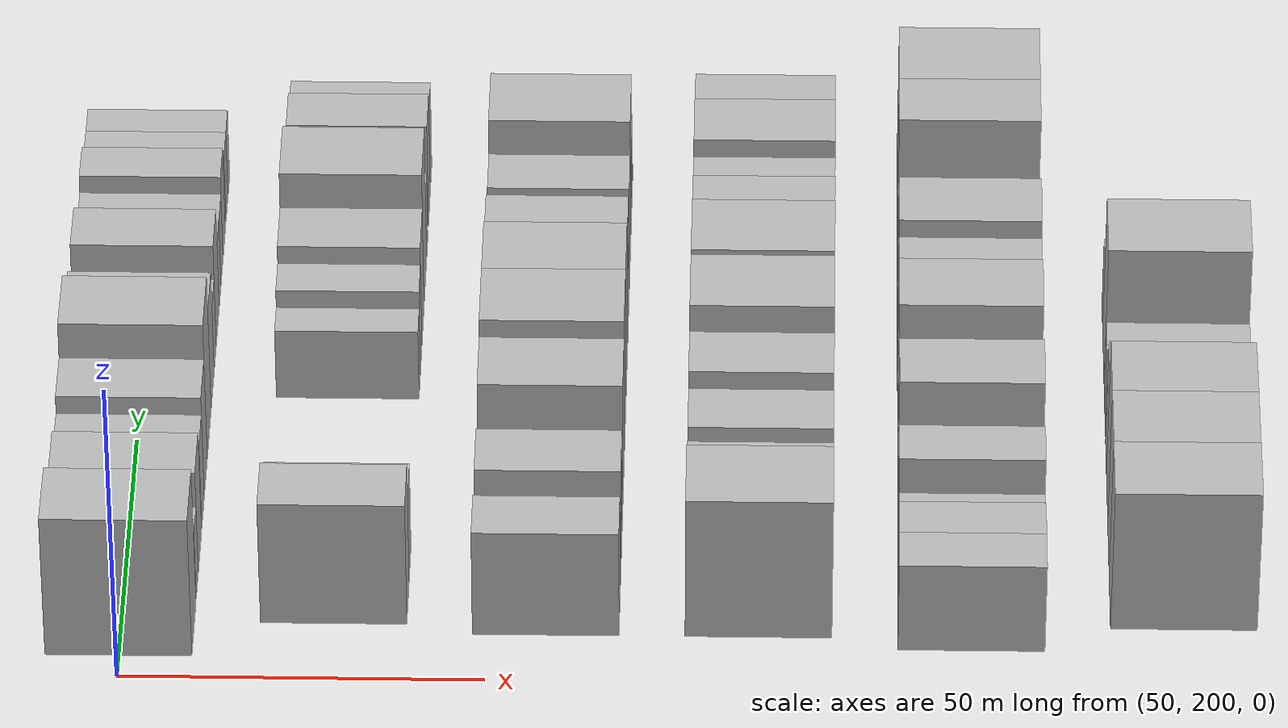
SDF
<sdf version="1.6">
 <world name="default">
  <model name="building_80">
   <static>1</static>
   <pose>50.0000 209.7068 0 0.000000 0.000000 0.000000</pose>
   <link name="link">
    <pose>0 0 12.00 0 0 0</pose>
    <collision name="collision"><geometry><box><size>20.0000 10.8484 24.0000</size></box></geometry></collision>
    <visual name="visual">
     <cast_shadows>0</cast_shadows>
     <geometry><box><size>20.0000 10.8484 24.0000</size></box></geometry>
     <material>
      <script>
       <uri>model://HANNAS_wall/materials/scripts</uri>
       <uri>model://HANNAS_wall/materials/textures</uri>
       <name>vrc/HANNAS_wall</name>
      </script>
     </material>
    </visual>
   </link>
  </model>
  <model name="building_81">
   <static>1</static>
   <pose>50.0000 218.8407 0 0.000000 0.000000 0.000000</pose>
   <link name="link">
    <pose>0 0 6.00 0 0 0</pose>
    <collision name="collision"><geometry><box><size>20.0000 5.4193 12.0000</size></box></geometry></collision>
    <visual name="visual">
     <cast_shadows>0</cast_shadows>
     <geometry><box><size>20.0000 5.4193 12.0000</size></box></geometry>
     <material>
      <script>
       <uri>model://HANNAS_wall/materials/scripts</uri>
       <uri>model://HANNAS_wall/materials/textures</uri>
       <name>vrc/HANNAS_wall</name>
      </script>
     </material>
    </visual>
   </link>
  </model>
  <model name="building_82">
   <static>1</static>
   <pose>50.0000 225.8525 0 0.000000 0.000000 0.000000</pose>
   <link name="link">
    <pose>0 0 9.00 0 0 0</pose>
    <collision name="collision"><geometry><box><size>20.0000 8.6045 18.0000</size></box></geometry></collision>
    <visual name="visual">
     <cast_shadows>0</cast_shadows>
     <geometry><box><size>20.0000 8.6045 18.0000</size></box></geometry>
     <material>
      <script>
       <uri>model://HANNAS_wall/materials/scripts</uri>
       <uri>model://HANNAS_wall/materials/textures</uri>
       <name>vrc/HANNAS_wall</name>
      </script>
     </material>
    </visual>
   </link>
  </model>
  <model name="building_83">
   <static>1</static>
   <pose>50.0000 234.4042 0 0.000000 0.000000 0.000000</pose>
   <link name="link">
    <pose>0 0 7.50 0 0 0</pose>
    <collision name="collision"><geometry><box><size>20.0000 6.4987 15.0000</size></box></geometry></collision>
    <visual name="visual">
     <cast_shadows>0</cast_shadows>
     <geometry><box><size>20.0000 6.4987 15.0000</size></box></geometry>
     <material>
      <script>
       <uri>model://HANNAS_wall/materials/scripts</uri>
       <uri>model://HANNAS_wall/materials/textures</uri>
       <name>vrc/HANNAS_wall</name>
      </script>
     </material>
    </visual>
   </link>
  </model>
  <model name="building_84">
   <static>1</static>
   <pose>50.0000 241.8752 0 0.000000 0.000000 0.000000</pose>
   <link name="link">
    <pose>0 0 9.00 0 0 0</pose>
    <collision name="collision"><geometry><box><size>20.0000 8.4433 18.0000</size></box></geometry></collision>
    <visual name="visual">
     <cast_shadows>0</cast_shadows>
     <geometry><box><size>20.0000 8.4433 18.0000</size></box></geometry>
     <material>
      <script>
       <uri>model://HANNAS_wall/materials/scripts</uri>
       <uri>model://HANNAS_wall/materials/textures</uri>
       <name>vrc/HANNAS_wall</name>
      </script>
     </material>
    </visual>
   </link>
  </model>
  <model name="building_85">
   <static>1</static>
   <pose>50.0000 251.4144 0 0.000000 0.000000 0.000000</pose>
   <link name="link">
    <pose>0 0 12.00 0 0 0</pose>
    <collision name="collision"><geometry><box><size>20.0000 10.6352 24.0000</size></box></geometry></collision>
    <visual name="visual">
     <cast_shadows>0</cast_shadows>
     <geometry><box><size>20.0000 10.6352 24.0000</size></box></geometry>
     <material>
      <script>
       <uri>model://HANNAS_wall/materials/scripts</uri>
       <uri>model://HANNAS_wall/materials/textures</uri>
       <name>vrc/HANNAS_wall</name>
      </script>
     </material>
    </visual>
   </link>
  </model>
  <model name="building_86">
   <static>1</static>
   <pose>50.0000 260.9720 0 0.000000 0.000000 0.000000</pose>
   <link name="link">
    <pose>0 0 9.00 0 0 0</pose>
    <collision name="collision"><geometry><box><size>20.0000 8.4799 18.0000</size></box></geometry></collision>
    <visual name="visual">
     <cast_shadows>0</cast_shadows>
     <geometry><box><size>20.0000 8.4799 18.0000</size></box></geometry>
     <material>
      <script>
       <uri>model://HANNAS_wall/materials/scripts</uri>
       <uri>model://HANNAS_wall/materials/textures</uri>
       <name>vrc/HANNAS_wall</name>
      </script>
     </material>
    </visual>
   </link>
  </model>
  <model name="building_87">
   <static>1</static>
   <pose>50.0000 268.1597 0 0.000000 0.000000 0.000000</pose>
   <link name="link">
    <pose>0 0 6.00 0 0 0</pose>
    <collision name="collision"><geometry><box><size>20.0000 5.8956 12.0000</size></box></geometry></collision>
    <visual name="visual">
     <cast_shadows>0</cast_shadows>
     <geometry><box><size>20.0000 5.8956 12.0000</size></box></geometry>
     <material>
      <script>
       <uri>model://HANNAS_wall/materials/scripts</uri>
       <uri>model://HANNAS_wall/materials/textures</uri>
       <name>vrc/HANNAS_wall</name>
      </script>
     </material>
    </visual>
   </link>
  </model>
  <model name="building_88">
   <static>1</static>
   <pose>50.0000 275.2918 0 0.000000 0.000000 0.000000</pose>
   <link name="link">
    <pose>0 0 9.00 0 0 0</pose>
    <collision name="collision"><geometry><box><size>20.0000 8.3685 18.0000</size></box></geometry></collision>
    <visual name="visual">
     <cast_shadows>0</cast_shadows>
     <geometry><box><size>20.0000 8.3685 18.0000</size></box></geometry>
     <material>
      <script>
       <uri>model://HANNAS_wall/materials/scripts</uri>
       <uri>model://HANNAS_wall/materials/textures</uri>
       <name>vrc/HANNAS_wall</name>
      </script>
     </material>
    </visual>
   </link>
  </model>
  <model name="building_89">
   <static>1</static>
   <pose>50.0000 282.0948 0 0.000000 0.000000 0.000000</pose>
   <link name="link">
    <pose>0 0 6.00 0 0 0</pose>
    <collision name="collision"><geometry><box><size>20.0000 5.2375 12.0000</size></box></geometry></collision>
    <visual name="visual">
     <cast_shadows>0</cast_shadows>
     <geometry><box><size>20.0000 5.2375 12.0000</size></box></geometry>
     <material>
      <script>
       <uri>model://HANNAS_wall/materials/scripts</uri>
       <uri>model://HANNAS_wall/materials/textures</uri>
       <name>vrc/HANNAS_wall</name>
      </script>
     </material>
    </visual>
   </link>
  </model>
  <model name="building_90">
   <static>1</static>
   <pose>50.0000 287.6227 0 0.000000 0.000000 0.000000</pose>
   <link name="link">
    <pose>0 0 6.00 0 0 0</pose>
    <collision name="collision"><geometry><box><size>20.0000 5.8184 12.0000</size></box></geometry></collision>
    <visual name="visual">
     <cast_shadows>0</cast_shadows>
     <geometry><box><size>20.0000 5.8184 12.0000</size></box></geometry>
     <material>
      <script>
       <uri>model://HANNAS_wall/materials/scripts</uri>
       <uri>model://HANNAS_wall/materials/textures</uri>
       <name>vrc/HANNAS_wall</name>
      </script>
     </material>
    </visual>
   </link>
  </model>
  <model name="building_91">
   <static>1</static>
   <pose>50.0000 293.8794 0 0.000000 0.000000 0.000000</pose>
   <link name="link">
    <pose>0 0 7.50 0 0 0</pose>
    <collision name="collision"><geometry><box><size>20.0000 6.6950 15.0000</size></box></geometry></collision>
    <visual name="visual">
     <cast_shadows>0</cast_shadows>
     <geometry><box><size>20.0000 6.6950 15.0000</size></box></geometry>
     <material>
      <script>
       <uri>model://HANNAS_wall/materials/scripts</uri>
       <uri>model://HANNAS_wall/materials/textures</uri>
       <name>vrc/HANNAS_wall</name>
      </script>
     </material>
    </visual>
   </link>
  </model>
  <model name="building_92">
   <static>1</static>
   <pose>50.0000 302.0099 0 0.000000 0.000000 0.000000</pose>
   <link name="link">
    <pose>0 0 6.00 0 0 0</pose>
    <collision name="collision"><geometry><box><size>20.0000 5.5660 12.0000</size></box></geometry></collision>
    <visual name="visual">
     <cast_shadows>0</cast_shadows>
     <geometry><box><size>20.0000 5.5660 12.0000</size></box></geometry>
     <material>
      <script>
       <uri>model://HANNAS_wall/materials/scripts</uri>
       <uri>model://HANNAS_wall/materials/textures</uri>
       <name>vrc/HANNAS_wall</name>
      </script>
     </material>
    </visual>
   </link>
  </model>
  <model name="building_93">
   <static>1</static>
   <pose>50.0000 307.3367 0 0.000000 0.000000 0.000000</pose>
   <link name="link">
    <pose>0 0 6.00 0 0 0</pose>
    <collision name="collision"><geometry><box><size>20.0000 5.0877 12.0000</size></box></geometry></collision>
    <visual name="visual">
     <cast_shadows>0</cast_shadows>
     <geometry><box><size>20.0000 5.0877 12.0000</size></box></geometry>
     <material>
      <script>
       <uri>model://HANNAS_wall/materials/scripts</uri>
       <uri>model://HANNAS_wall/materials/textures</uri>
       <name>vrc/HANNAS_wall</name>
      </script>
     </material>
    </visual>
   </link>
  </model>
  <model name="building_198">
   <static>1</static>
   <pose>79.0000 215.8227 0 0.000000 0.000000 0.000000</pose>
   <link name="link">
    <pose>0 0 10.50 0 0 0</pose>
    <collision name="collision"><geometry><box><size>20.0000 8.8198 21.0000</size></box></geometry></collision>
    <visual name="visual">
     <cast_shadows>0</cast_shadows>
     <geometry><box><size>20.0000 8.8198 21.0000</size></box></geometry>
     <material>
      <script>
       <uri>model://HANNAS_wall/materials/scripts</uri>
       <uri>model://HANNAS_wall/materials/textures</uri>
       <name>vrc/HANNAS_wall</name>
      </script>
     </material>
    </visual>
   </link>
  </model>
  <model name="building_199">
   <static>1</static>
   <pose>79.0000 223.9350 0 0.000000 0.000000 0.000000</pose>
   <link name="link">
    <pose>0 0 7.50 0 0 0</pose>
    <collision name="collision"><geometry><box><size>20.0000 7.4048 15.0000</size></box></geometry></collision>
    <visual name="visual">
     <cast_shadows>0</cast_shadows>
     <geometry><box><size>20.0000 7.4048 15.0000</size></box></geometry>
     <material>
      <script>
       <uri>model://HANNAS_wall/materials/scripts</uri>
       <uri>model://HANNAS_wall/materials/textures</uri>
       <name>vrc/HANNAS_wall</name>
      </script>
     </material>
    </visual>
   </link>
  </model>
  <model name="building_200">
   <static>1</static>
   <pose>79.0000 262.4907 0 0.000000 0.000000 0.000000</pose>
   <link name="link">
    <pose>0 0 6.00 0 0 0</pose>
    <collision name="collision"><geometry><box><size>20.0000 5.2355 12.0000</size></box></geometry></collision>
    <visual name="visual">
     <cast_shadows>0</cast_shadows>
     <geometry><box><size>20.0000 5.2355 12.0000</size></box></geometry>
     <material>
      <script>
       <uri>model://HANNAS_wall/materials/scripts</uri>
       <uri>model://HANNAS_wall/materials/textures</uri>
       <name>vrc/HANNAS_wall</name>
      </script>
     </material>
    </visual>
   </link>
  </model>
  <model name="building_201">
   <static>1</static>
   <pose>79.0000 268.1668 0 0.000000 0.000000 0.000000</pose>
   <link name="link">
    <pose>0 0 7.50 0 0 0</pose>
    <collision name="collision"><geometry><box><size>20.0000 6.1167 15.0000</size></box></geometry></collision>
    <visual name="visual">
     <cast_shadows>0</cast_shadows>
     <geometry><box><size>20.0000 6.1167 15.0000</size></box></geometry>
     <material>
      <script>
       <uri>model://HANNAS_wall/materials/scripts</uri>
       <uri>model://HANNAS_wall/materials/textures</uri>
       <name>vrc/HANNAS_wall</name>
      </script>
     </material>
    </visual>
   </link>
  </model>
  <model name="building_202">
   <static>1</static>
   <pose>79.0000 275.6401 0 0.000000 0.000000 0.000000</pose>
   <link name="link">
    <pose>0 0 9.00 0 0 0</pose>
    <collision name="collision"><geometry><box><size>20.0000 8.8299 18.0000</size></box></geometry></collision>
    <visual name="visual">
     <cast_shadows>0</cast_shadows>
     <geometry><box><size>20.0000 8.8299 18.0000</size></box></geometry>
     <material>
      <script>
       <uri>model://HANNAS_wall/materials/scripts</uri>
       <uri>model://HANNAS_wall/materials/textures</uri>
       <name>vrc/HANNAS_wall</name>
      </script>
     </material>
    </visual>
   </link>
  </model>
  <model name="building_203">
   <static>1</static>
   <pose>79.0000 285.4652 0 0.000000 0.000000 0.000000</pose>
   <link name="link">
    <pose>0 0 12.00 0 0 0</pose>
    <collision name="collision"><geometry><box><size>20.0000 10.8202 24.0000</size></box></geometry></collision>
    <visual name="visual">
     <cast_shadows>0</cast_shadows>
     <geometry><box><size>20.0000 10.8202 24.0000</size></box></geometry>
     <material>
      <script>
       <uri>model://HANNAS_wall/materials/scripts</uri>
       <uri>model://HANNAS_wall/materials/textures</uri>
       <name>vrc/HANNAS_wall</name>
      </script>
     </material>
    </visual>
   </link>
  </model>
  <model name="building_204">
   <static>1</static>
   <pose>79.0000 293.3561 0 0.000000 0.000000 0.000000</pose>
   <link name="link">
    <pose>0 0 6.00 0 0 0</pose>
    <collision name="collision"><geometry><box><size>20.0000 4.9617 12.0000</size></box></geometry></collision>
    <visual name="visual">
     <cast_shadows>0</cast_shadows>
     <geometry><box><size>20.0000 4.9617 12.0000</size></box></geometry>
     <material>
      <script>
       <uri>model://HANNAS_wall/materials/scripts</uri>
       <uri>model://HANNAS_wall/materials/textures</uri>
       <name>vrc/HANNAS_wall</name>
      </script>
     </material>
    </visual>
   </link>
  </model>
  <model name="building_205">
   <static>1</static>
   <pose>79.0000 302.6104 0 0.000000 0.000000 0.000000</pose>
   <link name="link">
    <pose>0 0 9.00 0 0 0</pose>
    <collision name="collision"><geometry><box><size>20.0000 7.5470 18.0000</size></box></geometry></collision>
    <visual name="visual">
     <cast_shadows>0</cast_shadows>
     <geometry><box><size>20.0000 7.5470 18.0000</size></box></geometry>
     <material>
      <script>
       <uri>model://HANNAS_wall/materials/scripts</uri>
       <uri>model://HANNAS_wall/materials/textures</uri>
       <name>vrc/HANNAS_wall</name>
      </script>
     </material>
    </visual>
   </link>
  </model>
  <model name="building_206">
   <static>1</static>
   <pose>79.0000 309.6953 0 0.000000 0.000000 0.000000</pose>
   <link name="link">
    <pose>0 0 7.50 0 0 0</pose>
    <collision name="collision"><geometry><box><size>20.0000 6.6227 15.0000</size></box></geometry></collision>
    <visual name="visual">
     <cast_shadows>0</cast_shadows>
     <geometry><box><size>20.0000 6.6227 15.0000</size></box></geometry>
     <material>
      <script>
       <uri>model://HANNAS_wall/materials/scripts</uri>
       <uri>model://HANNAS_wall/materials/textures</uri>
       <name>vrc/HANNAS_wall</name>
      </script>
     </material>
    </visual>
   </link>
  </model>
  <model name="building_297">
   <static>1</static>
   <pose>108.0000 213.4554 0 0.000000 0.000000 0.000000</pose>
   <link name="link">
    <pose>0 0 9.00 0 0 0</pose>
    <collision name="collision"><geometry><box><size>20.0000 7.9887 18.0000</size></box></geometry></collision>
    <visual name="visual">
     <cast_shadows>0</cast_shadows>
     <geometry><box><size>20.0000 7.9887 18.0000</size></box></geometry>
     <material>
      <script>
       <uri>model://HANNAS_wall/materials/scripts</uri>
       <uri>model://HANNAS_wall/materials/textures</uri>
       <name>vrc/HANNAS_wall</name>
      </script>
     </material>
    </visual>
   </link>
  </model>
  <model name="building_298">
   <static>1</static>
   <pose>108.0000 220.1293 0 0.000000 0.000000 0.000000</pose>
   <link name="link">
    <pose>0 0 6.00 0 0 0</pose>
    <collision name="collision"><geometry><box><size>20.0000 5.3591 12.0000</size></box></geometry></collision>
    <visual name="visual">
     <cast_shadows>0</cast_shadows>
     <geometry><box><size>20.0000 5.3591 12.0000</size></box></geometry>
     <material>
      <script>
       <uri>model://HANNAS_wall/materials/scripts</uri>
       <uri>model://HANNAS_wall/materials/textures</uri>
       <name>vrc/HANNAS_wall</name>
      </script>
     </material>
    </visual>
   </link>
  </model>
  <model name="building_299">
   <static>1</static>
   <pose>108.0000 227.2455 0 0.000000 0.000000 0.000000</pose>
   <link name="link">
    <pose>0 0 9.00 0 0 0</pose>
    <collision name="collision"><geometry><box><size>20.0000 8.8735 18.0000</size></box></geometry></collision>
    <visual name="visual">
     <cast_shadows>0</cast_shadows>
     <geometry><box><size>20.0000 8.8735 18.0000</size></box></geometry>
     <material>
      <script>
       <uri>model://HANNAS_wall/materials/scripts</uri>
       <uri>model://HANNAS_wall/materials/textures</uri>
       <name>vrc/HANNAS_wall</name>
      </script>
     </material>
    </visual>
   </link>
  </model>
  <model name="building_300">
   <static>1</static>
   <pose>108.0000 234.6073 0 0.000000 0.000000 0.000000</pose>
   <link name="link">
    <pose>0 0 6.00 0 0 0</pose>
    <collision name="collision"><geometry><box><size>20.0000 5.8501 12.0000</size></box></geometry></collision>
    <visual name="visual">
     <cast_shadows>0</cast_shadows>
     <geometry><box><size>20.0000 5.8501 12.0000</size></box></geometry>
     <material>
      <script>
       <uri>model://HANNAS_wall/materials/scripts</uri>
       <uri>model://HANNAS_wall/materials/textures</uri>
       <name>vrc/HANNAS_wall</name>
      </script>
     </material>
    </visual>
   </link>
  </model>
  <model name="building_301">
   <static>1</static>
   <pose>108.0000 242.7178 0 0.000000 0.000000 0.000000</pose>
   <link name="link">
    <pose>0 0 10.50 0 0 0</pose>
    <collision name="collision"><geometry><box><size>20.0000 10.3708 21.0000</size></box></geometry></collision>
    <visual name="visual">
     <cast_shadows>0</cast_shadows>
     <geometry><box><size>20.0000 10.3708 21.0000</size></box></geometry>
     <material>
      <script>
       <uri>model://HANNAS_wall/materials/scripts</uri>
       <uri>model://HANNAS_wall/materials/textures</uri>
       <name>vrc/HANNAS_wall</name>
      </script>
     </material>
    </visual>
   </link>
  </model>
  <model name="building_302">
   <static>1</static>
   <pose>108.0000 253.6608 0 0.000000 0.000000 0.000000</pose>
   <link name="link">
    <pose>0 0 12.00 0 0 0</pose>
    <collision name="collision"><geometry><box><size>20.0000 11.5152 24.0000</size></box></geometry></collision>
    <visual name="visual">
     <cast_shadows>0</cast_shadows>
     <geometry><box><size>20.0000 11.5152 24.0000</size></box></geometry>
     <material>
      <script>
       <uri>model://HANNAS_wall/materials/scripts</uri>
       <uri>model://HANNAS_wall/materials/textures</uri>
       <name>vrc/HANNAS_wall</name>
      </script>
     </material>
    </visual>
   </link>
  </model>
  <model name="building_303">
   <static>1</static>
   <pose>108.0000 264.6144 0 0.000000 0.000000 0.000000</pose>
   <link name="link">
    <pose>0 0 12.00 0 0 0</pose>
    <collision name="collision"><geometry><box><size>20.0000 10.3921 24.0000</size></box></geometry></collision>
    <visual name="visual">
     <cast_shadows>0</cast_shadows>
     <geometry><box><size>20.0000 10.3921 24.0000</size></box></geometry>
     <material>
      <script>
       <uri>model://HANNAS_wall/materials/scripts</uri>
       <uri>model://HANNAS_wall/materials/textures</uri>
       <name>vrc/HANNAS_wall</name>
      </script>
     </material>
    </visual>
   </link>
  </model>
  <model name="building_304">
   <static>1</static>
   <pose>108.0000 274.7030 0 0.000000 0.000000 0.000000</pose>
   <link name="link">
    <pose>0 0 10.50 0 0 0</pose>
    <collision name="collision"><geometry><box><size>20.0000 9.7850 21.0000</size></box></geometry></collision>
    <visual name="visual">
     <cast_shadows>0</cast_shadows>
     <geometry><box><size>20.0000 9.7850 21.0000</size></box></geometry>
     <material>
      <script>
       <uri>model://HANNAS_wall/materials/scripts</uri>
       <uri>model://HANNAS_wall/materials/textures</uri>
       <name>vrc/HANNAS_wall</name>
      </script>
     </material>
    </visual>
   </link>
  </model>
  <model name="building_305">
   <static>1</static>
   <pose>108.0000 282.2852 0 0.000000 0.000000 0.000000</pose>
   <link name="link">
    <pose>0 0 6.00 0 0 0</pose>
    <collision name="collision"><geometry><box><size>20.0000 5.3795 12.0000</size></box></geometry></collision>
    <visual name="visual">
     <cast_shadows>0</cast_shadows>
     <geometry><box><size>20.0000 5.3795 12.0000</size></box></geometry>
     <material>
      <script>
       <uri>model://HANNAS_wall/materials/scripts</uri>
       <uri>model://HANNAS_wall/materials/textures</uri>
       <name>vrc/HANNAS_wall</name>
      </script>
     </material>
    </visual>
   </link>
  </model>
  <model name="building_306">
   <static>1</static>
   <pose>108.0000 288.8533 0 0.000000 0.000000 0.000000</pose>
   <link name="link">
    <pose>0 0 9.00 0 0 0</pose>
    <collision name="collision"><geometry><box><size>20.0000 7.7566 18.0000</size></box></geometry></collision>
    <visual name="visual">
     <cast_shadows>0</cast_shadows>
     <geometry><box><size>20.0000 7.7566 18.0000</size></box></geometry>
     <material>
      <script>
       <uri>model://HANNAS_wall/materials/scripts</uri>
       <uri>model://HANNAS_wall/materials/textures</uri>
       <name>vrc/HANNAS_wall</name>
      </script>
     </material>
    </visual>
   </link>
  </model>
  <model name="building_307">
   <static>1</static>
   <pose>108.0000 298.1878 0 0.000000 0.000000 0.000000</pose>
   <link name="link">
    <pose>0 0 12.00 0 0 0</pose>
    <collision name="collision"><geometry><box><size>20.0000 10.9125 24.0000</size></box></geometry></collision>
    <visual name="visual">
     <cast_shadows>0</cast_shadows>
     <geometry><box><size>20.0000 10.9125 24.0000</size></box></geometry>
     <material>
      <script>
       <uri>model://HANNAS_wall/materials/scripts</uri>
       <uri>model://HANNAS_wall/materials/textures</uri>
       <name>vrc/HANNAS_wall</name>
      </script>
     </material>
    </visual>
   </link>
  </model>
  <model name="building_308">
   <static>1</static>
   <pose>108.0000 307.3095 0 0.000000 0.000000 0.000000</pose>
   <link name="link">
    <pose>0 0 6.00 0 0 0</pose>
    <collision name="collision"><geometry><box><size>20.0000 5.3309 12.0000</size></box></geometry></collision>
    <visual name="visual">
     <cast_shadows>0</cast_shadows>
     <geometry><box><size>20.0000 5.3309 12.0000</size></box></geometry>
     <material>
      <script>
       <uri>model://HANNAS_wall/materials/scripts</uri>
       <uri>model://HANNAS_wall/materials/textures</uri>
       <name>vrc/HANNAS_wall</name>
      </script>
     </material>
    </visual>
   </link>
  </model>
  <model name="building_413">
   <static>1</static>
   <pose>137.0000 215.4804 0 0.000000 0.000000 0.000000</pose>
   <link name="link">
    <pose>0 0 12.00 0 0 0</pose>
    <collision name="collision"><geometry><box><size>20.0000 11.9788 24.0000</size></box></geometry></collision>
    <visual name="visual">
     <cast_shadows>0</cast_shadows>
     <geometry><box><size>20.0000 11.9788 24.0000</size></box></geometry>
     <material>
      <script>
       <uri>model://HANNAS_wall/materials/scripts</uri>
       <uri>model://HANNAS_wall/materials/textures</uri>
       <name>vrc/HANNAS_wall</name>
      </script>
     </material>
    </visual>
   </link>
  </model>
  <model name="building_414">
   <static>1</static>
   <pose>137.0000 225.4677 0 0.000000 0.000000 0.000000</pose>
   <link name="link">
    <pose>0 0 9.00 0 0 0</pose>
    <collision name="collision"><geometry><box><size>20.0000 7.9960 18.0000</size></box></geometry></collision>
    <visual name="visual">
     <cast_shadows>0</cast_shadows>
     <geometry><box><size>20.0000 7.9960 18.0000</size></box></geometry>
     <material>
      <script>
       <uri>model://HANNAS_wall/materials/scripts</uri>
       <uri>model://HANNAS_wall/materials/textures</uri>
       <name>vrc/HANNAS_wall</name>
      </script>
     </material>
    </visual>
   </link>
  </model>
  <model name="building_415">
   <static>1</static>
   <pose>137.0000 236.6578 0 0.000000 0.000000 0.000000</pose>
   <link name="link">
    <pose>0 0 9.00 0 0 0</pose>
    <collision name="collision"><geometry><box><size>20.0000 8.3842 18.0000</size></box></geometry></collision>
    <visual name="visual">
     <cast_shadows>0</cast_shadows>
     <geometry><box><size>20.0000 8.3842 18.0000</size></box></geometry>
     <material>
      <script>
       <uri>model://HANNAS_wall/materials/scripts</uri>
       <uri>model://HANNAS_wall/materials/textures</uri>
       <name>vrc/HANNAS_wall</name>
      </script>
     </material>
    </visual>
   </link>
  </model>
  <model name="building_416">
   <static>1</static>
   <pose>137.0000 245.2302 0 0.000000 0.000000 0.000000</pose>
   <link name="link">
    <pose>0 0 10.50 0 0 0</pose>
    <collision name="collision"><geometry><box><size>20.0000 8.7606 21.0000</size></box></geometry></collision>
    <visual name="visual">
     <cast_shadows>0</cast_shadows>
     <geometry><box><size>20.0000 8.7606 21.0000</size></box></geometry>
     <material>
      <script>
       <uri>model://HANNAS_wall/materials/scripts</uri>
       <uri>model://HANNAS_wall/materials/textures</uri>
       <name>vrc/HANNAS_wall</name>
      </script>
     </material>
    </visual>
   </link>
  </model>
  <model name="building_417">
   <static>1</static>
   <pose>137.0000 257.2826 0 0.000000 0.000000 0.000000</pose>
   <link name="link">
    <pose>0 0 12.00 0 0 0</pose>
    <collision name="collision"><geometry><box><size>20.0000 11.3441 24.0000</size></box></geometry></collision>
    <visual name="visual">
     <cast_shadows>0</cast_shadows>
     <geometry><box><size>20.0000 11.3441 24.0000</size></box></geometry>
     <material>
      <script>
       <uri>model://HANNAS_wall/materials/scripts</uri>
       <uri>model://HANNAS_wall/materials/textures</uri>
       <name>vrc/HANNAS_wall</name>
      </script>
     </material>
    </visual>
   </link>
  </model>
  <model name="building_418">
   <static>1</static>
   <pose>137.0000 269.6303 0 0.000000 0.000000 0.000000</pose>
   <link name="link">
    <pose>0 0 12.00 0 0 0</pose>
    <collision name="collision"><geometry><box><size>20.0000 11.3513 24.0000</size></box></geometry></collision>
    <visual name="visual">
     <cast_shadows>0</cast_shadows>
     <geometry><box><size>20.0000 11.3513 24.0000</size></box></geometry>
     <material>
      <script>
       <uri>model://HANNAS_wall/materials/scripts</uri>
       <uri>model://HANNAS_wall/materials/textures</uri>
       <name>vrc/HANNAS_wall</name>
      </script>
     </material>
    </visual>
   </link>
  </model>
  <model name="building_419">
   <static>1</static>
   <pose>137.0000 279.9226 0 0.000000 0.000000 0.000000</pose>
   <link name="link">
    <pose>0 0 10.50 0 0 0</pose>
    <collision name="collision"><geometry><box><size>20.0000 9.2333 21.0000</size></box></geometry></collision>
    <visual name="visual">
     <cast_shadows>0</cast_shadows>
     <geometry><box><size>20.0000 9.2333 21.0000</size></box></geometry>
     <material>
      <script>
       <uri>model://HANNAS_wall/materials/scripts</uri>
       <uri>model://HANNAS_wall/materials/textures</uri>
       <name>vrc/HANNAS_wall</name>
      </script>
     </material>
    </visual>
   </link>
  </model>
  <model name="building_420">
   <static>1</static>
   <pose>137.0000 288.5923 0 0.000000 0.000000 0.000000</pose>
   <link name="link">
    <pose>0 0 9.00 0 0 0</pose>
    <collision name="collision"><geometry><box><size>20.0000 8.1060 18.0000</size></box></geometry></collision>
    <visual name="visual">
     <cast_shadows>0</cast_shadows>
     <geometry><box><size>20.0000 8.1060 18.0000</size></box></geometry>
     <material>
      <script>
       <uri>model://HANNAS_wall/materials/scripts</uri>
       <uri>model://HANNAS_wall/materials/textures</uri>
       <name>vrc/HANNAS_wall</name>
      </script>
     </material>
    </visual>
   </link>
  </model>
  <model name="building_421">
   <static>1</static>
   <pose>137.0000 297.4205 0 0.000000 0.000000 0.000000</pose>
   <link name="link">
    <pose>0 0 10.50 0 0 0</pose>
    <collision name="collision"><geometry><box><size>20.0000 9.5505 21.0000</size></box></geometry></collision>
    <visual name="visual">
     <cast_shadows>0</cast_shadows>
     <geometry><box><size>20.0000 9.5505 21.0000</size></box></geometry>
     <material>
      <script>
       <uri>model://HANNAS_wall/materials/scripts</uri>
       <uri>model://HANNAS_wall/materials/textures</uri>
       <name>vrc/HANNAS_wall</name>
      </script>
     </material>
    </visual>
   </link>
  </model>
  <model name="building_422">
   <static>1</static>
   <pose>137.0000 307.9760 0 0.000000 0.000000 0.000000</pose>
   <link name="link">
    <pose>0 0 9.00 0 0 0</pose>
    <collision name="collision"><geometry><box><size>20.0000 7.5604 18.0000</size></box></geometry></collision>
    <visual name="visual">
     <cast_shadows>0</cast_shadows>
     <geometry><box><size>20.0000 7.5604 18.0000</size></box></geometry>
     <material>
      <script>
       <uri>model://HANNAS_wall/materials/scripts</uri>
       <uri>model://HANNAS_wall/materials/textures</uri>
       <name>vrc/HANNAS_wall</name>
      </script>
     </material>
    </visual>
   </link>
  </model>
  <model name="building_423">
   <static>1</static>
   <pose>137.0000 314.2291 0 0.000000 0.000000 0.000000</pose>
   <link name="link">
    <pose>0 0 6.00 0 0 0</pose>
    <collision name="collision"><geometry><box><size>20.0000 4.9458 12.0000</size></box></geometry></collision>
    <visual name="visual">
     <cast_shadows>0</cast_shadows>
     <geometry><box><size>20.0000 4.9458 12.0000</size></box></geometry>
     <material>
      <script>
       <uri>model://HANNAS_wall/materials/scripts</uri>
       <uri>model://HANNAS_wall/materials/textures</uri>
       <name>vrc/HANNAS_wall</name>
      </script>
     </material>
    </visual>
   </link>
  </model>
  <model name="building_525">
   <static>1</static>
   <pose>166.0000 210.7058 0 0.000000 0.000000 0.000000</pose>
   <link name="link">
    <pose>0 0 7.50 0 0 0</pose>
    <collision name="collision"><geometry><box><size>20.0000 7.0792 15.0000</size></box></geometry></collision>
    <visual name="visual">
     <cast_shadows>0</cast_shadows>
     <geometry><box><size>20.0000 7.0792 15.0000</size></box></geometry>
     <material>
      <script>
       <uri>model://HANNAS_wall/materials/scripts</uri>
       <uri>model://HANNAS_wall/materials/textures</uri>
       <name>vrc/HANNAS_wall</name>
      </script>
     </material>
    </visual>
   </link>
  </model>
  <model name="building_526">
   <static>1</static>
   <pose>166.0000 217.5119 0 0.000000 0.000000 0.000000</pose>
   <link name="link">
    <pose>0 0 7.50 0 0 0</pose>
    <collision name="collision"><geometry><box><size>20.0000 6.5329 15.0000</size></box></geometry></collision>
    <visual name="visual">
     <cast_shadows>0</cast_shadows>
     <geometry><box><size>20.0000 6.5329 15.0000</size></box></geometry>
     <material>
      <script>
       <uri>model://HANNAS_wall/materials/scripts</uri>
       <uri>model://HANNAS_wall/materials/textures</uri>
       <name>vrc/HANNAS_wall</name>
      </script>
     </material>
    </visual>
   </link>
  </model>
  <model name="building_527">
   <static>1</static>
   <pose>166.0000 223.4690 0 0.000000 0.000000 0.000000</pose>
   <link name="link">
    <pose>0 0 6.00 0 0 0</pose>
    <collision name="collision"><geometry><box><size>20.0000 5.3813 12.0000</size></box></geometry></collision>
    <visual name="visual">
     <cast_shadows>0</cast_shadows>
     <geometry><box><size>20.0000 5.3813 12.0000</size></box></geometry>
     <material>
      <script>
       <uri>model://HANNAS_wall/materials/scripts</uri>
       <uri>model://HANNAS_wall/materials/textures</uri>
       <name>vrc/HANNAS_wall</name>
      </script>
     </material>
    </visual>
   </link>
  </model>
  <model name="building_528">
   <static>1</static>
   <pose>166.0000 229.8247 0 0.000000 0.000000 0.000000</pose>
   <link name="link">
    <pose>0 0 9.00 0 0 0</pose>
    <collision name="collision"><geometry><box><size>20.0000 7.3300 18.0000</size></box></geometry></collision>
    <visual name="visual">
     <cast_shadows>0</cast_shadows>
     <geometry><box><size>20.0000 7.3300 18.0000</size></box></geometry>
     <material>
      <script>
       <uri>model://HANNAS_wall/materials/scripts</uri>
       <uri>model://HANNAS_wall/materials/textures</uri>
       <name>vrc/HANNAS_wall</name>
      </script>
     </material>
    </visual>
   </link>
  </model>
  <model name="building_529">
   <static>1</static>
   <pose>166.0000 236.2726 0 0.000000 0.000000 0.000000</pose>
   <link name="link">
    <pose>0 0 6.00 0 0 0</pose>
    <collision name="collision"><geometry><box><size>20.0000 5.5659 12.0000</size></box></geometry></collision>
    <visual name="visual">
     <cast_shadows>0</cast_shadows>
     <geometry><box><size>20.0000 5.5659 12.0000</size></box></geometry>
     <material>
      <script>
       <uri>model://HANNAS_wall/materials/scripts</uri>
       <uri>model://HANNAS_wall/materials/textures</uri>
       <name>vrc/HANNAS_wall</name>
      </script>
     </material>
    </visual>
   </link>
  </model>
  <model name="building_530">
   <static>1</static>
   <pose>166.0000 243.8494 0 0.000000 0.000000 0.000000</pose>
   <link name="link">
    <pose>0 0 10.50 0 0 0</pose>
    <collision name="collision"><geometry><box><size>20.0000 9.5877 21.0000</size></box></geometry></collision>
    <visual name="visual">
     <cast_shadows>0</cast_shadows>
     <geometry><box><size>20.0000 9.5877 21.0000</size></box></geometry>
     <material>
      <script>
       <uri>model://HANNAS_wall/materials/scripts</uri>
       <uri>model://HANNAS_wall/materials/textures</uri>
       <name>vrc/HANNAS_wall</name>
      </script>
     </material>
    </visual>
   </link>
  </model>
  <model name="building_531">
   <static>1</static>
   <pose>166.0000 253.2918 0 0.000000 0.000000 0.000000</pose>
   <link name="link">
    <pose>0 0 6.00 0 0 0</pose>
    <collision name="collision"><geometry><box><size>20.0000 5.2970 12.0000</size></box></geometry></collision>
    <visual name="visual">
     <cast_shadows>0</cast_shadows>
     <geometry><box><size>20.0000 5.2970 12.0000</size></box></geometry>
     <material>
      <script>
       <uri>model://HANNAS_wall/materials/scripts</uri>
       <uri>model://HANNAS_wall/materials/textures</uri>
       <name>vrc/HANNAS_wall</name>
      </script>
     </material>
    </visual>
   </link>
  </model>
  <model name="building_532">
   <static>1</static>
   <pose>166.0000 261.1314 0 0.000000 0.000000 0.000000</pose>
   <link name="link">
    <pose>0 0 10.50 0 0 0</pose>
    <collision name="collision"><geometry><box><size>20.0000 10.3823 21.0000</size></box></geometry></collision>
    <visual name="visual">
     <cast_shadows>0</cast_shadows>
     <geometry><box><size>20.0000 10.3823 21.0000</size></box></geometry>
     <material>
      <script>
       <uri>model://HANNAS_wall/materials/scripts</uri>
       <uri>model://HANNAS_wall/materials/textures</uri>
       <name>vrc/HANNAS_wall</name>
      </script>
     </material>
    </visual>
   </link>
  </model>
  <model name="building_533">
   <static>1</static>
   <pose>166.0000 270.5759 0 0.000000 0.000000 0.000000</pose>
   <link name="link">
    <pose>0 0 9.00 0 0 0</pose>
    <collision name="collision"><geometry><box><size>20.0000 8.5067 18.0000</size></box></geometry></collision>
    <visual name="visual">
     <cast_shadows>0</cast_shadows>
     <geometry><box><size>20.0000 8.5067 18.0000</size></box></geometry>
     <material>
      <script>
       <uri>model://HANNAS_wall/materials/scripts</uri>
       <uri>model://HANNAS_wall/materials/textures</uri>
       <name>vrc/HANNAS_wall</name>
      </script>
     </material>
    </visual>
   </link>
  </model>
  <model name="building_534">
   <static>1</static>
   <pose>166.0000 279.7173 0 0.000000 0.000000 0.000000</pose>
   <link name="link">
    <pose>0 0 10.50 0 0 0</pose>
    <collision name="collision"><geometry><box><size>20.0000 9.7760 21.0000</size></box></geometry></collision>
    <visual name="visual">
     <cast_shadows>0</cast_shadows>
     <geometry><box><size>20.0000 9.7760 21.0000</size></box></geometry>
     <material>
      <script>
       <uri>model://HANNAS_wall/materials/scripts</uri>
       <uri>model://HANNAS_wall/materials/textures</uri>
       <name>vrc/HANNAS_wall</name>
      </script>
     </material>
    </visual>
   </link>
  </model>
  <model name="building_535">
   <static>1</static>
   <pose>166.0000 287.7132 0 0.000000 0.000000 0.000000</pose>
   <link name="link">
    <pose>0 0 7.50 0 0 0</pose>
    <collision name="collision"><geometry><box><size>20.0000 6.2159 15.0000</size></box></geometry></collision>
    <visual name="visual">
     <cast_shadows>0</cast_shadows>
     <geometry><box><size>20.0000 6.2159 15.0000</size></box></geometry>
     <material>
      <script>
       <uri>model://HANNAS_wall/materials/scripts</uri>
       <uri>model://HANNAS_wall/materials/textures</uri>
       <name>vrc/HANNAS_wall</name>
      </script>
     </material>
    </visual>
   </link>
  </model>
  <model name="building_536">
   <static>1</static>
   <pose>166.0000 298.6375 0 0.000000 0.000000 0.000000</pose>
   <link name="link">
    <pose>0 0 12.00 0 0 0</pose>
    <collision name="collision"><geometry><box><size>20.0000 9.6326 24.0000</size></box></geometry></collision>
    <visual name="visual">
     <cast_shadows>0</cast_shadows>
     <geometry><box><size>20.0000 9.6326 24.0000</size></box></geometry>
     <material>
      <script>
       <uri>model://HANNAS_wall/materials/scripts</uri>
       <uri>model://HANNAS_wall/materials/textures</uri>
       <name>vrc/HANNAS_wall</name>
      </script>
     </material>
    </visual>
   </link>
  </model>
  <model name="building_537">
   <static>1</static>
   <pose>166.0000 309.4310 0 0.000000 0.000000 0.000000</pose>
   <link name="link">
    <pose>0 0 12.00 0 0 0</pose>
    <collision name="collision"><geometry><box><size>20.0000 11.9544 24.0000</size></box></geometry></collision>
    <visual name="visual">
     <cast_shadows>0</cast_shadows>
     <geometry><box><size>20.0000 11.9544 24.0000</size></box></geometry>
     <material>
      <script>
       <uri>model://HANNAS_wall/materials/scripts</uri>
       <uri>model://HANNAS_wall/materials/textures</uri>
       <name>vrc/HANNAS_wall</name>
      </script>
     </material>
    </visual>
   </link>
  </model>
  <model name="building_643">
   <static>1</static>
   <pose>195.0000 217.6051 0 0.000000 0.000000 0.000000</pose>
   <link name="link">
    <pose>0 0 12.00 0 0 0</pose>
    <collision name="collision"><geometry><box><size>20.0000 11.1351 24.0000</size></box></geometry></collision>
    <visual name="visual">
     <cast_shadows>0</cast_shadows>
     <geometry><box><size>20.0000 11.1351 24.0000</size></box></geometry>
     <material>
      <script>
       <uri>model://HANNAS_wall/materials/scripts</uri>
       <uri>model://HANNAS_wall/materials/textures</uri>
       <name>vrc/HANNAS_wall</name>
      </script>
     </material>
    </visual>
   </link>
  </model>
  <model name="building_644">
   <static>1</static>
   <pose>195.0000 228.6396 0 0.000000 0.000000 0.000000</pose>
   <link name="link">
    <pose>0 0 12.00 0 0 0</pose>
    <collision name="collision"><geometry><box><size>20.0000 10.9338 24.0000</size></box></geometry></collision>
    <visual name="visual">
     <cast_shadows>0</cast_shadows>
     <geometry><box><size>20.0000 10.9338 24.0000</size></box></geometry>
     <material>
      <script>
       <uri>model://HANNAS_wall/materials/scripts</uri>
       <uri>model://HANNAS_wall/materials/textures</uri>
       <name>vrc/HANNAS_wall</name>
      </script>
     </material>
    </visual>
   </link>
  </model>
  <model name="building_645">
   <static>1</static>
   <pose>195.0000 239.4664 0 0.000000 0.000000 0.000000</pose>
   <link name="link">
    <pose>0 0 12.00 0 0 0</pose>
    <collision name="collision"><geometry><box><size>20.0000 10.7199 24.0000</size></box></geometry></collision>
    <visual name="visual">
     <cast_shadows>0</cast_shadows>
     <geometry><box><size>20.0000 10.7199 24.0000</size></box></geometry>
     <material>
      <script>
       <uri>model://HANNAS_wall/materials/scripts</uri>
       <uri>model://HANNAS_wall/materials/textures</uri>
       <name>vrc/HANNAS_wall</name>
      </script>
     </material>
    </visual>
   </link>
  </model>
  <model name="building_646">
   <static>1</static>
   <pose>195.0000 248.4766 0 0.000000 0.000000 0.000000</pose>
   <link name="link">
    <pose>0 0 9.00 0 0 0</pose>
    <collision name="collision"><geometry><box><size>20.0000 7.3004 18.0000</size></box></geometry></collision>
    <visual name="visual">
     <cast_shadows>0</cast_shadows>
     <geometry><box><size>20.0000 7.3004 18.0000</size></box></geometry>
     <material>
      <script>
       <uri>model://HANNAS_wall/materials/scripts</uri>
       <uri>model://HANNAS_wall/materials/textures</uri>
       <name>vrc/HANNAS_wall</name>
      </script>
     </material>
    </visual>
   </link>
  </model>
  <model name="building_647">
   <static>1</static>
   <pose>195.0000 255.9132 0 0.000000 0.000000 0.000000</pose>
   <link name="link">
    <pose>0 0 6.00 0 0 0</pose>
    <collision name="collision"><geometry><box><size>20.0000 5.5729 12.0000</size></box></geometry></collision>
    <visual name="visual">
     <cast_shadows>0</cast_shadows>
     <geometry><box><size>20.0000 5.5729 12.0000</size></box></geometry>
     <material>
      <script>
       <uri>model://HANNAS_wall/materials/scripts</uri>
       <uri>model://HANNAS_wall/materials/textures</uri>
       <name>vrc/HANNAS_wall</name>
      </script>
     </material>
    </visual>
   </link>
  </model>
  <model name="building_648">
   <static>1</static>
   <pose>195.0000 261.1982 0 0.000000 0.000000 0.000000</pose>
   <link name="link">
    <pose>0 0 6.00 0 0 0</pose>
    <collision name="collision"><geometry><box><size>20.0000 4.9973 12.0000</size></box></geometry></collision>
    <visual name="visual">
     <cast_shadows>0</cast_shadows>
     <geometry><box><size>20.0000 4.9973 12.0000</size></box></geometry>
     <material>
      <script>
       <uri>model://HANNAS_wall/materials/scripts</uri>
       <uri>model://HANNAS_wall/materials/textures</uri>
       <name>vrc/HANNAS_wall</name>
      </script>
     </material>
    </visual>
   </link>
  </model>
  <model name="building_649">
   <static>1</static>
   <pose>195.0000 270.5308 0 0.000000 0.000000 0.000000</pose>
   <link name="link">
    <pose>0 0 12.00 0 0 0</pose>
    <collision name="collision"><geometry><box><size>20.0000 11.6679 24.0000</size></box></geometry></collision>
    <visual name="visual">
     <cast_shadows>0</cast_shadows>
     <geometry><box><size>20.0000 11.6679 24.0000</size></box></geometry>
     <material>
      <script>
       <uri>model://HANNAS_wall/materials/scripts</uri>
       <uri>model://HANNAS_wall/materials/textures</uri>
       <name>vrc/HANNAS_wall</name>
      </script>
     </material>
    </visual>
   </link>
  </model>
  <model name="building_650">
   <static>1</static>
   <pose>195.0000 279.3559 0 0.000000 0.000000 0.000000</pose>
   <link name="link">
    <pose>0 0 6.00 0 0 0</pose>
    <collision name="collision"><geometry><box><size>20.0000 5.9823 12.0000</size></box></geometry></collision>
    <visual name="visual">
     <cast_shadows>0</cast_shadows>
     <geometry><box><size>20.0000 5.9823 12.0000</size></box></geometry>
     <material>
      <script>
       <uri>model://HANNAS_wall/materials/scripts</uri>
       <uri>model://HANNAS_wall/materials/textures</uri>
       <name>vrc/HANNAS_wall</name>
      </script>
     </material>
    </visual>
   </link>
  </model>
 </world>
</sdf>
